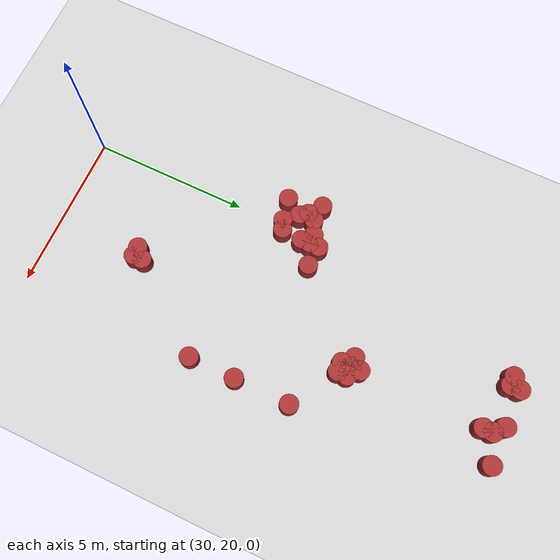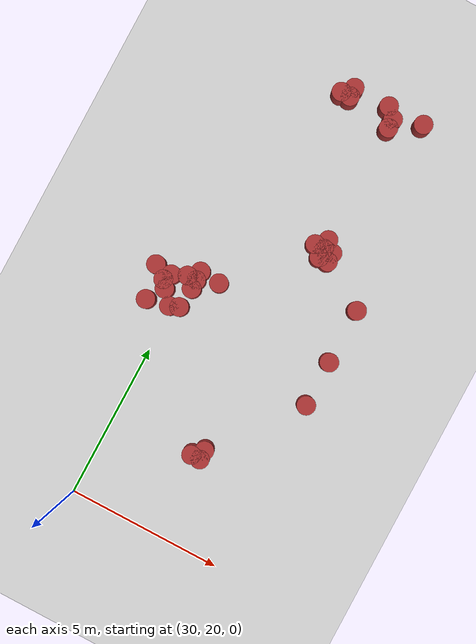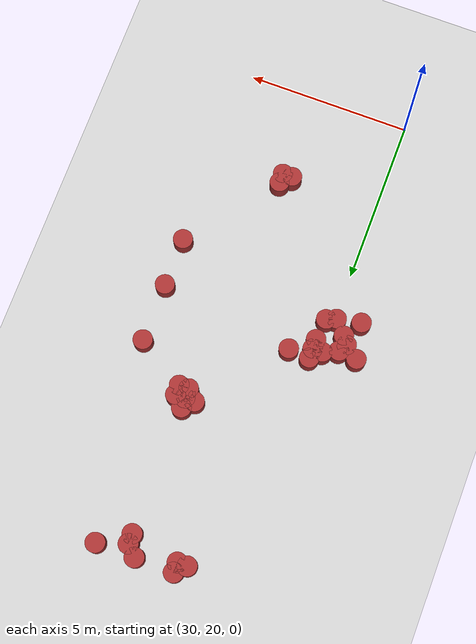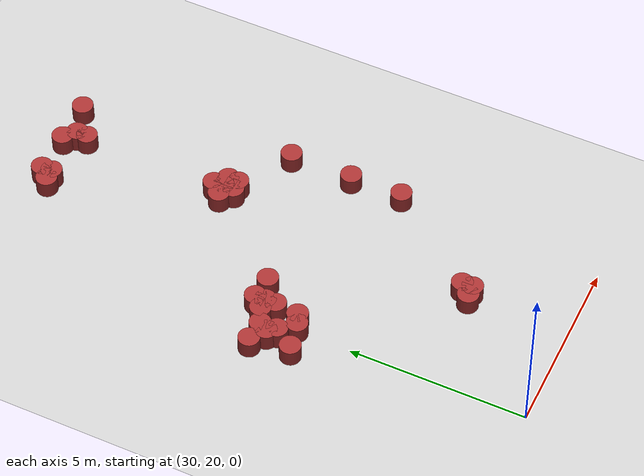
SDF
<sdf version="1.6">
 <world name="default">
  <model name="ground_plane">
   <static>1</static>
   <link name="link">
    <collision name="collision">
     <geometry><plane><normal>0 0 1</normal><size>100 100</size></plane></geometry>
     <surface><friction><ode><mu>100</mu><mu2>50</mu2></ode></friction></surface>
    </collision>
    <visual name="visual">
     <cast_shadows>0</cast_shadows>
     <geometry><plane><normal>0 0 1</normal><size>100 100</size></plane></geometry>
     <material>
      <script><uri>file://media/materials/scripts/gazebo.material</uri><name>Gazebo/Grey</name></script>
     </material>
    </visual>
   </link>
  </model>
  <model name="unit_cylinder_398">
   <static>1</static>
   <pose>29.3977 27.1492 0 0 -0 0</pose>
   <link name="link">
    <inertial>
     <mass>1</mass>
     <inertia><ixx>0.145833</ixx><ixy>0</ixy><ixz>0</ixz><iyy>0.145833</iyy><iyz>0</iyz><izz>0.125</izz></inertia>
    </inertial>
    <collision name="collision">
     <geometry><cylinder><radius>0.3</radius><length>1</length></cylinder></geometry>
    </collision>
    <visual name="visual">
     <geometry><cylinder><radius>0.3</radius><length>1</length></cylinder></geometry>
     <material><ambient>0.648 0.192 0.192 1</ambient><diffuse>0.648 0.192 0.192 1</diffuse></material>
     <material>
      <script><name>Gazebo/Grey</name><uri>file://media/materials/scripts/gazebo.material</uri></script>
     </material>
    </visual>
   </link>
  </model>
  <model name="unit_cylinder_399">
   <static>1</static>
   <pose>30 27.6 0 0 -0 0</pose>
   <link name="link">
    <inertial>
     <mass>1</mass>
     <inertia><ixx>0.145833</ixx><ixy>0</ixy><ixz>0</ixz><iyy>0.145833</iyy><iyz>0</iyz><izz>0.125</izz></inertia>
    </inertial>
    <collision name="collision">
     <geometry><cylinder><radius>0.3</radius><length>1</length></cylinder></geometry>
    </collision>
    <visual name="visual">
     <geometry><cylinder><radius>0.3</radius><length>1</length></cylinder></geometry>
     <material><ambient>0.648 0.192 0.192 1</ambient><diffuse>0.648 0.192 0.192 1</diffuse></material>
     <material>
      <script><name>Gazebo/Grey</name><uri>file://media/materials/scripts/gazebo.material</uri></script>
     </material>
    </visual>
   </link>
  </model>
  <model name="unit_cylinder_400">
   <static>1</static>
   <pose>29.5677 26.9112 0 0 -0 0</pose>
   <link name="link">
    <inertial>
     <mass>1</mass>
     <inertia><ixx>0.145833</ixx><ixy>0</ixy><ixz>0</ixz><iyy>0.145833</iyy><iyz>0</iyz><izz>0.125</izz></inertia>
    </inertial>
    <collision name="collision">
     <geometry><cylinder><radius>0.3</radius><length>1</length></cylinder></geometry>
    </collision>
    <visual name="visual">
     <geometry><cylinder><radius>0.3</radius><length>1</length></cylinder></geometry>
     <material><ambient>0.648 0.192 0.192 1</ambient><diffuse>0.648 0.192 0.192 1</diffuse></material>
     <material>
      <script><name>Gazebo/Grey</name><uri>file://media/materials/scripts/gazebo.material</uri></script>
     </material>
    </visual>
   </link>
  </model>
  <model name="unit_cylinder_401">
   <static>1</static>
   <pose>30.3 27.3 0 0 -0 0</pose>
   <link name="link">
    <inertial>
     <mass>1</mass>
     <inertia><ixx>0.145833</ixx><ixy>0</ixy><ixz>0</ixz><iyy>0.145833</iyy><iyz>0</iyz><izz>0.125</izz></inertia>
    </inertial>
    <collision name="collision">
     <geometry><cylinder><radius>0.3</radius><length>1</length></cylinder></geometry>
    </collision>
    <visual name="visual">
     <geometry><cylinder><radius>0.3</radius><length>1</length></cylinder></geometry>
     <material><ambient>0.648 0.192 0.192 1</ambient><diffuse>0.648 0.192 0.192 1</diffuse></material>
     <material>
      <script><name>Gazebo/Grey</name><uri>file://media/materials/scripts/gazebo.material</uri></script>
     </material>
    </visual>
   </link>
  </model>
  <model name="unit_cylinder_402">
   <static>1</static>
   <pose>30.3 27.6 0 0 -0 0</pose>
   <link name="link">
    <inertial>
     <mass>1</mass>
     <inertia><ixx>0.145833</ixx><ixy>0</ixy><ixz>0</ixz><iyy>0.145833</iyy><iyz>0</iyz><izz>0.125</izz></inertia>
    </inertial>
    <collision name="collision">
     <geometry><cylinder><radius>0.3</radius><length>1</length></cylinder></geometry>
    </collision>
    <visual name="visual">
     <geometry><cylinder><radius>0.3</radius><length>1</length></cylinder></geometry>
     <material><ambient>0.648 0.192 0.192 1</ambient><diffuse>0.648 0.192 0.192 1</diffuse></material>
     <material>
      <script><name>Gazebo/Grey</name><uri>file://media/materials/scripts/gazebo.material</uri></script>
     </material>
    </visual>
   </link>
  </model>
  <model name="unit_cylinder_403">
   <static>1</static>
   <pose>30.3 27.9 0 0 -0 0</pose>
   <link name="link">
    <inertial>
     <mass>1</mass>
     <inertia><ixx>0.145833</ixx><ixy>0</ixy><ixz>0</ixz><iyy>0.145833</iyy><iyz>0</iyz><izz>0.125</izz></inertia>
    </inertial>
    <collision name="collision">
     <geometry><cylinder><radius>0.3</radius><length>1</length></cylinder></geometry>
    </collision>
    <visual name="visual">
     <geometry><cylinder><radius>0.3</radius><length>1</length></cylinder></geometry>
     <material><ambient>0.648 0.192 0.192 1</ambient><diffuse>0.648 0.192 0.192 1</diffuse></material>
     <material>
      <script><name>Gazebo/Grey</name><uri>file://media/materials/scripts/gazebo.material</uri></script>
     </material>
    </visual>
   </link>
  </model>
  <model name="unit_cylinder_407">
   <static>1</static>
   <pose>30.228 26.6253 0 0 -0 0</pose>
   <link name="link">
    <inertial>
     <mass>1</mass>
     <inertia><ixx>0.145833</ixx><ixy>0</ixy><ixz>0</ixz><iyy>0.145833</iyy><iyz>0</iyz><izz>0.125</izz></inertia>
    </inertial>
    <collision name="collision">
     <geometry><cylinder><radius>0.3</radius><length>1</length></cylinder></geometry>
    </collision>
    <visual name="visual">
     <geometry><cylinder><radius>0.3</radius><length>1</length></cylinder></geometry>
     <material><ambient>0.648 0.192 0.192 1</ambient><diffuse>0.648 0.192 0.192 1</diffuse></material>
     <material>
      <script><name>Gazebo/Grey</name><uri>file://media/materials/scripts/gazebo.material</uri></script>
     </material>
    </visual>
   </link>
  </model>
  <model name="unit_cylinder_408">
   <static>1</static>
   <pose>29.5468 27.3961 0 0 -0 0</pose>
   <link name="link">
    <inertial>
     <mass>1</mass>
     <inertia><ixx>0.145833</ixx><ixy>0</ixy><ixz>0</ixz><iyy>0.145833</iyy><iyz>0</iyz><izz>0.125</izz></inertia>
    </inertial>
    <collision name="collision">
     <geometry><cylinder><radius>0.3</radius><length>1</length></cylinder></geometry>
    </collision>
    <visual name="visual">
     <geometry><cylinder><radius>0.3</radius><length>1</length></cylinder></geometry>
     <material><ambient>0.648 0.192 0.192 1</ambient><diffuse>0.648 0.192 0.192 1</diffuse></material>
     <material>
      <script><name>Gazebo/Grey</name><uri>file://media/materials/scripts/gazebo.material</uri></script>
     </material>
    </visual>
   </link>
  </model>
  <model name="unit_cylinder_414">
   <static>1</static>
   <pose>30.9612 27.8456 0 0 -0 0</pose>
   <link name="link">
    <inertial>
     <mass>1</mass>
     <inertia><ixx>0.145833</ixx><ixy>0</ixy><ixz>0</ixz><iyy>0.145833</iyy><iyz>0</iyz><izz>0.125</izz></inertia>
    </inertial>
    <collision name="collision">
     <geometry><cylinder><radius>0.3</radius><length>1</length></cylinder></geometry>
    </collision>
    <visual name="visual">
     <geometry><cylinder><radius>0.3</radius><length>1</length></cylinder></geometry>
     <material><ambient>0.648 0.192 0.192 1</ambient><diffuse>0.648 0.192 0.192 1</diffuse></material>
     <material>
      <script><name>Gazebo/Grey</name><uri>file://media/materials/scripts/gazebo.material</uri></script>
     </material>
    </visual>
   </link>
  </model>
  <model name="unit_cylinder_418">
   <static>1</static>
   <pose>29.2078 26.3589 0 0 -0 0</pose>
   <link name="link">
    <inertial>
     <mass>1</mass>
     <inertia><ixx>0.145833</ixx><ixy>0</ixy><ixz>0</ixz><iyy>0.145833</iyy><iyz>0</iyz><izz>0.125</izz></inertia>
    </inertial>
    <collision name="collision">
     <geometry><cylinder><radius>0.3</radius><length>1</length></cylinder></geometry>
    </collision>
    <visual name="visual">
     <geometry><cylinder><radius>0.3</radius><length>1</length></cylinder></geometry>
     <material><ambient>0.648 0.192 0.192 1</ambient><diffuse>0.648 0.192 0.192 1</diffuse></material>
     <material>
      <script><name>Gazebo/Grey</name><uri>file://media/materials/scripts/gazebo.material</uri></script>
     </material>
    </visual>
   </link>
  </model>
  <model name="unit_cylinder_419">
   <static>1</static>
   <pose>28.985 27.4495 0 0 -0 0</pose>
   <link name="link">
    <inertial>
     <mass>1</mass>
     <inertia><ixx>0.145833</ixx><ixy>0</ixy><ixz>0</ixz><iyy>0.145833</iyy><iyz>0</iyz><izz>0.125</izz></inertia>
    </inertial>
    <collision name="collision">
     <geometry><cylinder><radius>0.3</radius><length>1</length></cylinder></geometry>
    </collision>
    <visual name="visual">
     <geometry><cylinder><radius>0.3</radius><length>1</length></cylinder></geometry>
     <material><ambient>0.648 0.192 0.192 1</ambient><diffuse>0.648 0.192 0.192 1</diffuse></material>
     <material>
      <script><name>Gazebo/Grey</name><uri>file://media/materials/scripts/gazebo.material</uri></script>
     </material>
    </visual>
   </link>
  </model>
  <model name="unit_cylinder_420">
   <static>1</static>
   <pose>31.5 34.8 0 0 -0 0</pose>
   <link name="link">
    <inertial>
     <mass>1</mass>
     <inertia><ixx>0.145833</ixx><ixy>0</ixy><ixz>0</ixz><iyy>0.145833</iyy><iyz>0</iyz><izz>0.125</izz></inertia>
    </inertial>
    <collision name="collision">
     <geometry><cylinder><radius>0.3</radius><length>1</length></cylinder></geometry>
    </collision>
    <visual name="visual">
     <geometry><cylinder><radius>0.3</radius><length>1</length></cylinder></geometry>
     <material><ambient>0.648 0.192 0.192 1</ambient><diffuse>0.648 0.192 0.192 1</diffuse></material>
     <material>
      <script><name>Gazebo/Grey</name><uri>file://media/materials/scripts/gazebo.material</uri></script>
     </material>
    </visual>
   </link>
  </model>
  <model name="unit_cylinder_423">
   <static>1</static>
   <pose>29.9379 26.5061 0 0 -0 0</pose>
   <link name="link">
    <inertial>
     <mass>1</mass>
     <inertia><ixx>0.145833</ixx><ixy>0</ixy><ixz>0</ixz><iyy>0.145833</iyy><iyz>0</iyz><izz>0.125</izz></inertia>
    </inertial>
    <collision name="collision">
     <geometry><cylinder><radius>0.3</radius><length>1</length></cylinder></geometry>
    </collision>
    <visual name="visual">
     <geometry><cylinder><radius>0.3</radius><length>1</length></cylinder></geometry>
     <material><ambient>0.648 0.192 0.192 1</ambient><diffuse>0.648 0.192 0.192 1</diffuse></material>
     <material>
      <script><name>Gazebo/Grey</name><uri>file://media/materials/scripts/gazebo.material</uri></script>
     </material>
    </visual>
   </link>
  </model>
  <model name="unit_cylinder_424">
   <static>1</static>
   <pose>31.8 34.8 0 0 -0 0</pose>
   <link name="link">
    <inertial>
     <mass>1</mass>
     <inertia><ixx>0.145833</ixx><ixy>0</ixy><ixz>0</ixz><iyy>0.145833</iyy><iyz>0</iyz><izz>0.125</izz></inertia>
    </inertial>
    <collision name="collision">
     <geometry><cylinder><radius>0.3</radius><length>1</length></cylinder></geometry>
    </collision>
    <visual name="visual">
     <geometry><cylinder><radius>0.3</radius><length>1</length></cylinder></geometry>
     <material><ambient>0.648 0.192 0.192 1</ambient><diffuse>0.648 0.192 0.192 1</diffuse></material>
     <material>
      <script><name>Gazebo/Grey</name><uri>file://media/materials/scripts/gazebo.material</uri></script>
     </material>
    </visual>
   </link>
  </model>
  <model name="unit_cylinder_425">
   <static>1</static>
   <pose>31.8 35.1 0 0 -0 0</pose>
   <link name="link">
    <inertial>
     <mass>1</mass>
     <inertia><ixx>0.145833</ixx><ixy>0</ixy><ixz>0</ixz><iyy>0.145833</iyy><iyz>0</iyz><izz>0.125</izz></inertia>
    </inertial>
    <collision name="collision">
     <geometry><cylinder><radius>0.3</radius><length>1</length></cylinder></geometry>
    </collision>
    <visual name="visual">
     <geometry><cylinder><radius>0.3</radius><length>1</length></cylinder></geometry>
     <material><ambient>0.648 0.192 0.192 1</ambient><diffuse>0.648 0.192 0.192 1</diffuse></material>
     <material>
      <script><name>Gazebo/Grey</name><uri>file://media/materials/scripts/gazebo.material</uri></script>
     </material>
    </visual>
   </link>
  </model>
  <model name="unit_cylinder_431">
   <static>1</static>
   <pose>32.7 22.8 0 0 -0 0</pose>
   <link name="link">
    <inertial>
     <mass>1</mass>
     <inertia><ixx>0.145833</ixx><ixy>0</ixy><ixz>0</ixz><iyy>0.145833</iyy><iyz>0</iyz><izz>0.125</izz></inertia>
    </inertial>
    <collision name="collision">
     <geometry><cylinder><radius>0.3</radius><length>1</length></cylinder></geometry>
    </collision>
    <visual name="visual">
     <geometry><cylinder><radius>0.3</radius><length>1</length></cylinder></geometry>
     <material><ambient>0.648 0.192 0.192 1</ambient><diffuse>0.648 0.192 0.192 1</diffuse></material>
     <material>
      <script><name>Gazebo/Grey</name><uri>file://media/materials/scripts/gazebo.material</uri></script>
     </material>
    </visual>
   </link>
  </model>
  <model name="unit_cylinder_433">
   <static>1</static>
   <pose>33 22.8 0 0 -0 0</pose>
   <link name="link">
    <inertial>
     <mass>1</mass>
     <inertia><ixx>0.145833</ixx><ixy>0</ixy><ixz>0</ixz><iyy>0.145833</iyy><iyz>0</iyz><izz>0.125</izz></inertia>
    </inertial>
    <collision name="collision">
     <geometry><cylinder><radius>0.3</radius><length>1</length></cylinder></geometry>
    </collision>
    <visual name="visual">
     <geometry><cylinder><radius>0.3</radius><length>1</length></cylinder></geometry>
     <material><ambient>0.648 0.192 0.192 1</ambient><diffuse>0.648 0.192 0.192 1</diffuse></material>
     <material>
      <script><name>Gazebo/Grey</name><uri>file://media/materials/scripts/gazebo.material</uri></script>
     </material>
    </visual>
   </link>
  </model>
  <model name="unit_cylinder_434">
   <static>1</static>
   <pose>33 23.1 0 0 -0 0</pose>
   <link name="link">
    <inertial>
     <mass>1</mass>
     <inertia><ixx>0.145833</ixx><ixy>0</ixy><ixz>0</ixz><iyy>0.145833</iyy><iyz>0</iyz><izz>0.125</izz></inertia>
    </inertial>
    <collision name="collision">
     <geometry><cylinder><radius>0.3</radius><length>1</length></cylinder></geometry>
    </collision>
    <visual name="visual">
     <geometry><cylinder><radius>0.3</radius><length>1</length></cylinder></geometry>
     <material><ambient>0.648 0.192 0.192 1</ambient><diffuse>0.648 0.192 0.192 1</diffuse></material>
     <material>
      <script><name>Gazebo/Grey</name><uri>file://media/materials/scripts/gazebo.material</uri></script>
     </material>
    </visual>
   </link>
  </model>
  <model name="unit_cylinder_435">
   <static>1</static>
   <pose>33 30.3 0 0 -0 0</pose>
   <link name="link">
    <inertial>
     <mass>1</mass>
     <inertia><ixx>0.145833</ixx><ixy>0</ixy><ixz>0</ixz><iyy>0.145833</iyy><iyz>0</iyz><izz>0.125</izz></inertia>
    </inertial>
    <collision name="collision">
     <geometry><cylinder><radius>0.3</radius><length>1</length></cylinder></geometry>
    </collision>
    <visual name="visual">
     <geometry><cylinder><radius>0.3</radius><length>1</length></cylinder></geometry>
     <material><ambient>0.648 0.192 0.192 1</ambient><diffuse>0.648 0.192 0.192 1</diffuse></material>
     <material>
      <script><name>Gazebo/Grey</name><uri>file://media/materials/scripts/gazebo.material</uri></script>
     </material>
    </visual>
   </link>
  </model>
  <model name="unit_cylinder_436">
   <static>1</static>
   <pose>33 35.1 0 0 -0 0</pose>
   <link name="link">
    <inertial>
     <mass>1</mass>
     <inertia><ixx>0.145833</ixx><ixy>0</ixy><ixz>0</ixz><iyy>0.145833</iyy><iyz>0</iyz><izz>0.125</izz></inertia>
    </inertial>
    <collision name="collision">
     <geometry><cylinder><radius>0.3</radius><length>1</length></cylinder></geometry>
    </collision>
    <visual name="visual">
     <geometry><cylinder><radius>0.3</radius><length>1</length></cylinder></geometry>
     <material><ambient>0.648 0.192 0.192 1</ambient><diffuse>0.648 0.192 0.192 1</diffuse></material>
     <material>
      <script><name>Gazebo/Grey</name><uri>file://media/materials/scripts/gazebo.material</uri></script>
     </material>
    </visual>
   </link>
  </model>
  <model name="unit_cylinder_439">
   <static>1</static>
   <pose>33.3 30 0 0 -0 0</pose>
   <link name="link">
    <inertial>
     <mass>1</mass>
     <inertia><ixx>0.145833</ixx><ixy>0</ixy><ixz>0</ixz><iyy>0.145833</iyy><iyz>0</iyz><izz>0.125</izz></inertia>
    </inertial>
    <collision name="collision">
     <geometry><cylinder><radius>0.3</radius><length>1</length></cylinder></geometry>
    </collision>
    <visual name="visual">
     <geometry><cylinder><radius>0.3</radius><length>1</length></cylinder></geometry>
     <material><ambient>0.648 0.192 0.192 1</ambient><diffuse>0.648 0.192 0.192 1</diffuse></material>
     <material>
      <script><name>Gazebo/Grey</name><uri>file://media/materials/scripts/gazebo.material</uri></script>
     </material>
    </visual>
   </link>
  </model>
  <model name="unit_cylinder_440">
   <static>1</static>
   <pose>33.3 30.3 0 0 -0 0</pose>
   <link name="link">
    <inertial>
     <mass>1</mass>
     <inertia><ixx>0.145833</ixx><ixy>0</ixy><ixz>0</ixz><iyy>0.145833</iyy><iyz>0</iyz><izz>0.125</izz></inertia>
    </inertial>
    <collision name="collision">
     <geometry><cylinder><radius>0.3</radius><length>1</length></cylinder></geometry>
    </collision>
    <visual name="visual">
     <geometry><cylinder><radius>0.3</radius><length>1</length></cylinder></geometry>
     <material><ambient>0.648 0.192 0.192 1</ambient><diffuse>0.648 0.192 0.192 1</diffuse></material>
     <material>
      <script><name>Gazebo/Grey</name><uri>file://media/materials/scripts/gazebo.material</uri></script>
     </material>
    </visual>
   </link>
  </model>
  <model name="unit_cylinder_441">
   <static>1</static>
   <pose>33.3 30.6 0 0 -0 0</pose>
   <link name="link">
    <inertial>
     <mass>1</mass>
     <inertia><ixx>0.145833</ixx><ixy>0</ixy><ixz>0</ixz><iyy>0.145833</iyy><iyz>0</iyz><izz>0.125</izz></inertia>
    </inertial>
    <collision name="collision">
     <geometry><cylinder><radius>0.3</radius><length>1</length></cylinder></geometry>
    </collision>
    <visual name="visual">
     <geometry><cylinder><radius>0.3</radius><length>1</length></cylinder></geometry>
     <material><ambient>0.648 0.192 0.192 1</ambient><diffuse>0.648 0.192 0.192 1</diffuse></material>
     <material>
      <script><name>Gazebo/Grey</name><uri>file://media/materials/scripts/gazebo.material</uri></script>
     </material>
    </visual>
   </link>
  </model>
  <model name="unit_cylinder_442">
   <static>1</static>
   <pose>33.3 34.5 0 0 -0 0</pose>
   <link name="link">
    <inertial>
     <mass>1</mass>
     <inertia><ixx>0.145833</ixx><ixy>0</ixy><ixz>0</ixz><iyy>0.145833</iyy><iyz>0</iyz><izz>0.125</izz></inertia>
    </inertial>
    <collision name="collision">
     <geometry><cylinder><radius>0.3</radius><length>1</length></cylinder></geometry>
    </collision>
    <visual name="visual">
     <geometry><cylinder><radius>0.3</radius><length>1</length></cylinder></geometry>
     <material><ambient>0.648 0.192 0.192 1</ambient><diffuse>0.648 0.192 0.192 1</diffuse></material>
     <material>
      <script><name>Gazebo/Grey</name><uri>file://media/materials/scripts/gazebo.material</uri></script>
     </material>
    </visual>
   </link>
  </model>
  <model name="unit_cylinder_443">
   <static>1</static>
   <pose>33.3 34.8 0 0 -0 0</pose>
   <link name="link">
    <inertial>
     <mass>1</mass>
     <inertia><ixx>0.145833</ixx><ixy>0</ixy><ixz>0</ixz><iyy>0.145833</iyy><iyz>0</iyz><izz>0.125</izz></inertia>
    </inertial>
    <collision name="collision">
     <geometry><cylinder><radius>0.3</radius><length>1</length></cylinder></geometry>
    </collision>
    <visual name="visual">
     <geometry><cylinder><radius>0.3</radius><length>1</length></cylinder></geometry>
     <material><ambient>0.648 0.192 0.192 1</ambient><diffuse>0.648 0.192 0.192 1</diffuse></material>
     <material>
      <script><name>Gazebo/Grey</name><uri>file://media/materials/scripts/gazebo.material</uri></script>
     </material>
    </visual>
   </link>
  </model>
  <model name="unit_cylinder_445">
   <static>1</static>
   <pose>33.6 30 0 0 -0 0</pose>
   <link name="link">
    <inertial>
     <mass>1</mass>
     <inertia><ixx>0.145833</ixx><ixy>0</ixy><ixz>0</ixz><iyy>0.145833</iyy><iyz>0</iyz><izz>0.125</izz></inertia>
    </inertial>
    <collision name="collision">
     <geometry><cylinder><radius>0.3</radius><length>1</length></cylinder></geometry>
    </collision>
    <visual name="visual">
     <geometry><cylinder><radius>0.3</radius><length>1</length></cylinder></geometry>
     <material><ambient>0.648 0.192 0.192 1</ambient><diffuse>0.648 0.192 0.192 1</diffuse></material>
     <material>
      <script><name>Gazebo/Grey</name><uri>file://media/materials/scripts/gazebo.material</uri></script>
     </material>
    </visual>
   </link>
  </model>
  <model name="unit_cylinder_446">
   <static>1</static>
   <pose>33.6 30.3 0 0 -0 0</pose>
   <link name="link">
    <inertial>
     <mass>1</mass>
     <inertia><ixx>0.145833</ixx><ixy>0</ixy><ixz>0</ixz><iyy>0.145833</iyy><iyz>0</iyz><izz>0.125</izz></inertia>
    </inertial>
    <collision name="collision">
     <geometry><cylinder><radius>0.3</radius><length>1</length></cylinder></geometry>
    </collision>
    <visual name="visual">
     <geometry><cylinder><radius>0.3</radius><length>1</length></cylinder></geometry>
     <material><ambient>0.648 0.192 0.192 1</ambient><diffuse>0.648 0.192 0.192 1</diffuse></material>
     <material>
      <script><name>Gazebo/Grey</name><uri>file://media/materials/scripts/gazebo.material</uri></script>
     </material>
    </visual>
   </link>
  </model>
  <model name="unit_cylinder_447">
   <static>1</static>
   <pose>34.2 35.1 0 0 -0 0</pose>
   <link name="link">
    <inertial>
     <mass>1</mass>
     <inertia><ixx>0.145833</ixx><ixy>0</ixy><ixz>0</ixz><iyy>0.145833</iyy><iyz>0</iyz><izz>0.125</izz></inertia>
    </inertial>
    <collision name="collision">
     <geometry><cylinder><radius>0.3</radius><length>1</length></cylinder></geometry>
    </collision>
    <visual name="visual">
     <geometry><cylinder><radius>0.3</radius><length>1</length></cylinder></geometry>
     <material><ambient>0.648 0.192 0.192 1</ambient><diffuse>0.648 0.192 0.192 1</diffuse></material>
     <material>
      <script><name>Gazebo/Grey</name><uri>file://media/materials/scripts/gazebo.material</uri></script>
     </material>
    </visual>
   </link>
  </model>
  <model name="unit_cylinder_459">
   <static>1</static>
   <pose>35.1 25.8 0 0 -0 0</pose>
   <link name="link">
    <inertial>
     <mass>1</mass>
     <inertia><ixx>0.145833</ixx><ixy>0</ixy><ixz>0</ixz><iyy>0.145833</iyy><iyz>0</iyz><izz>0.125</izz></inertia>
    </inertial>
    <collision name="collision">
     <geometry><cylinder><radius>0.3</radius><length>1</length></cylinder></geometry>
    </collision>
    <visual name="visual">
     <geometry><cylinder><radius>0.3</radius><length>1</length></cylinder></geometry>
     <material><ambient>0.648 0.192 0.192 1</ambient><diffuse>0.648 0.192 0.192 1</diffuse></material>
     <material>
      <script><name>Gazebo/Grey</name><uri>file://media/materials/scripts/gazebo.material</uri></script>
     </material>
    </visual>
   </link>
  </model>
  <model name="unit_cylinder_460">
   <static>1</static>
   <pose>35.1 27.3 0 0 -0 0</pose>
   <link name="link">
    <inertial>
     <mass>1</mass>
     <inertia><ixx>0.145833</ixx><ixy>0</ixy><ixz>0</ixz><iyy>0.145833</iyy><iyz>0</iyz><izz>0.125</izz></inertia>
    </inertial>
    <collision name="collision">
     <geometry><cylinder><radius>0.3</radius><length>1</length></cylinder></geometry>
    </collision>
    <visual name="visual">
     <geometry><cylinder><radius>0.3</radius><length>1</length></cylinder></geometry>
     <material><ambient>0.648 0.192 0.192 1</ambient><diffuse>0.648 0.192 0.192 1</diffuse></material>
     <material>
      <script><name>Gazebo/Grey</name><uri>file://media/materials/scripts/gazebo.material</uri></script>
     </material>
    </visual>
   </link>
  </model>
  <model name="unit_cylinder_461">
   <static>1</static>
   <pose>35.1 29.1 0 0 -0 0</pose>
   <link name="link">
    <inertial>
     <mass>1</mass>
     <inertia><ixx>0.145833</ixx><ixy>0</ixy><ixz>0</ixz><iyy>0.145833</iyy><iyz>0</iyz><izz>0.125</izz></inertia>
    </inertial>
    <collision name="collision">
     <geometry><cylinder><radius>0.3</radius><length>1</length></cylinder></geometry>
    </collision>
    <visual name="visual">
     <geometry><cylinder><radius>0.3</radius><length>1</length></cylinder></geometry>
     <material><ambient>0.648 0.192 0.192 1</ambient><diffuse>0.648 0.192 0.192 1</diffuse></material>
     <material>
      <script><name>Gazebo/Grey</name><uri>file://media/materials/scripts/gazebo.material</uri></script>
     </material>
    </visual>
   </link>
  </model>
 </world>
</sdf>
